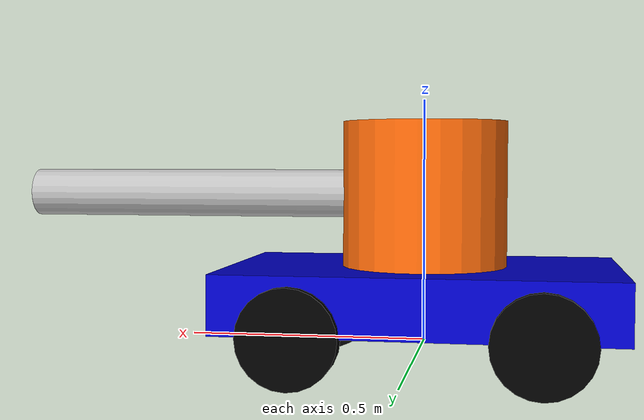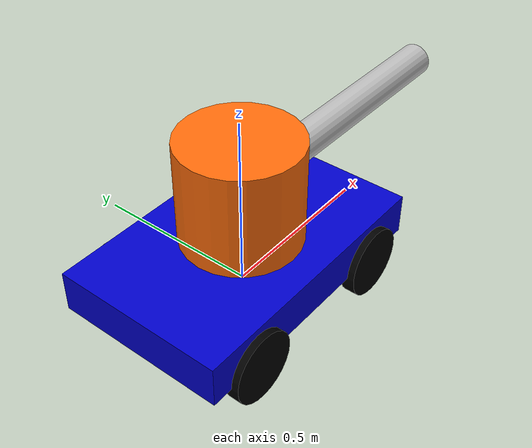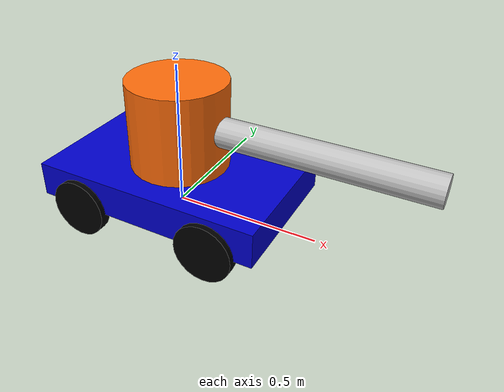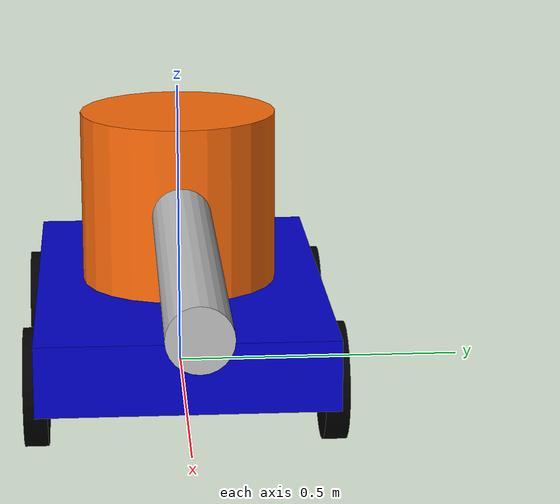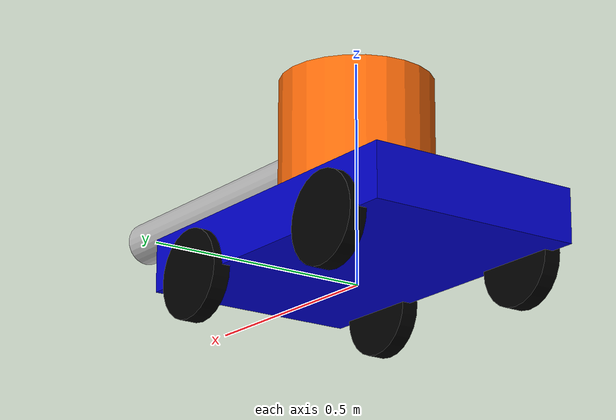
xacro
<?xml version="1.0"?>
<robot name="mbot" xmlns:xacro="http://www.ros.org/wiki/xacro">

  <xacro:include filename="$(find my_robot_gazebo)/urdf/inertia_matrix.xacro" />
  <xacro:include filename="$(find my_robot_gazebo)/urdf/robot_base_gazebo.xacro" />
  <xacro:include filename="joint_transmission.xacro" />
  <xacro:include filename="robot_controller.xacro" />
</robot>

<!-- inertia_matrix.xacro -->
<robot name="inertia_matrix" xmlns:xacro="http://wiki.ros.org/xacro">
  <!-- Macro for inertia matrix -->
  <xacro:macro name="sphere_inertial_matrix" params="m r">
    <inertial>
      <mass value="${m}" />
      <inertia ixx="${2*m*r*r/5}" ixy="0" ixz="0" iyy="${2*m*r*r/5}" iyz="0" izz="${2*m*r*r/5}" />
    </inertial>
  </xacro:macro>

  <xacro:macro name="cylinder_inertial_matrix" params="m r h">
    <inertial>
      <mass value="${m}" />
      <inertia ixx="${m*(3*r*r+h*h)/12}" ixy="0" ixz="0" iyy="${m*(3*r*r+h*h)/12}" iyz="0" izz="${m*r*r/2}" />
    </inertial>
  </xacro:macro>

  <xacro:macro name="Box_inertial_matrix" params="m l w h">
    <inertial>
      <mass value="${m}" />
      <inertia ixx="${m*(h*h + l*l)/12}" ixy="0" ixz="0" iyy="${m*(w*w + l*l)/12}" iyz="0" izz="${m*(w*w + h*h)/12}" />
    </inertial>
  </xacro:macro>
</robot>

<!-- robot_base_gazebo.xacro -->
<robot name="my_robot" xmlns:xacro="http://www.ros.org/wiki/xacro">
  <!-- PROPERTY LIST -->
  <xacro:property name="M_PI" value="3.1415926" />
  <xacro:property name="base_footprint_radius" value="0.001" />

  <xacro:property name="base_length" value="0.8" />
  <xacro:property name="base_width" value="0.5" />
  <xacro:property name="base_height" value="0.12" />
  <xacro:property name="base_mass" value="1" />

  <xacro:property name="wheel_mass" value="0.2" />
  <xacro:property name="wheel_radius" value="0.1" />
  <xacro:property name="wheel_length" value="0.04" />
  <xacro:property name="wheel_joint_x" value="${base_length/2*0.6}" />
  <xacro:property name="wheel_joint_y" value="${base_width/2}" />
  <xacro:property name="wheel_joint_z" value="-${base_height/2}" />

  <xacro:property name="tank_body_mass" value="1" />
  <xacro:property name="tank_body_radius" value="0.17" />
  <xacro:property name="tank_body_length" value="0.3" />

  <xacro:property name="cannon_radius" value="0.05" />
  <xacro:property name="cannon_length" value="0.7" />
  <xacro:property name="cannon_mass" value="0.7" />
  <xacro:property name="cannon_offset_x" value="0.5" />

  <!-- Defining the colors used in this robot -->
  <material name="black">
    <color rgba="0.0 0.0 0.0 1.0" />
  </material>
  <material name="blue">
    <color rgba="0.0 0.0 0.8 1.0" />
  </material>
  <material name="green">
    <color rgba="0.0 1.0 0.0 1.0" />
  </material>
  <material name="grey">
    <color rgba="0.2 0.2 0.2 1.0" />
  </material>
  <material name="orange">
    <color rgba="${255/255} ${108/255} ${10/255} 1.0" />
  </material>
  <material name="brown">
    <color rgba="${205/255} ${127/255} ${50/255} 1.0" />
  </material>
  <material name="red">
    <color rgba="0.8 0.0 0.0 1.0" />
  </material>
  <material name="white">
    <color rgba="1.0 1.0 1.0 1.0" />
  </material>
  <material name="silver">
    <color rgba="0.75 0.75 0.75 1" />
  </material>

  <link name="base_footprint">
    <visual name="base_footprint">
      <origin xyz="0.0 0.0 0.0" rpy="0.0 0.0 0.0" />
      <geometry>
        <sphere radius="${base_footprint_radius}" />
      </geometry>
    </visual>
  </link>
  <gazebo reference="base_footprint">
    <turnGravityOff>false</turnGravityOff>
  </gazebo>

  <joint name="base_footprint_joint" type="fixed">
    <parent link="base_footprint" />
    <child link="base_link" />
    <origin xyz="0.0 0.0 ${base_height*0.8}" rpy="0.0 0.0 0.0" />
  </joint>

  <link name="base_link">
    <visual>
      <origin xyz="0.0 0.0 0.0" rpy="0.0 0.0 0.0" />
      <geometry>
        <box size="${base_length} ${base_width} ${base_height}" />
      </geometry>
      <material name="blue" />
    </visual>
    <collision>
      <origin xyz="0.0 0.0 0.0" rpy="0.0 0.0 0.0" />
      <geometry>
        <box size="${base_length} ${base_width} ${base_height}" />
      </geometry>
    </collision>
    <xacro:Box_inertial_matrix m="${base_mass}" l="${base_length}" w="${base_width}" h="${base_height}" />
  </link>

  <gazebo reference="base_link">
    <material>Gazebo/Blue</material>
  </gazebo>

  <!-- Macro for robot wheel -->
  <xacro:macro name="wheels" params="prefix reflect1 reflect2">
    <joint name="${prefix}_wheel_joint" type="continuous">
      <origin xyz="${reflect1*wheel_joint_x} ${reflect2*wheel_joint_y} ${wheel_joint_z}" rpy="0.0 0.0 0.0" />
      <parent link="base_link" />
      <child link="${prefix}_wheel_link" />
      <axis xyz="0.0 1.0 0.0" />
    </joint>

    <link name="${prefix}_wheel_link">
      <visual>
        <origin xyz="0.0 0.0 0.0" rpy="${M_PI/2} 0.0 0.0" />
        <geometry>
          <cylinder radius="${wheel_radius}" length="${wheel_length}" />
        </geometry>
        <material name="black" />
      </visual>
      <collision>
        <origin xyz="0.0 0.0 0.0" rpy="${M_PI/2} 0.0 0.0" />
        <geometry>
          <cylinder radius="${wheel_radius}" length="${wheel_length}" />
        </geometry>
      </collision>
      <xacro:cylinder_inertial_matrix m="${wheel_mass}" r="${wheel_radius}" h="${wheel_length}" />
    </link>

    <gazebo reference="${prefix}_wheel_link">
      <material>Gazebo/Black</material>
    </gazebo>

  </xacro:macro>

  <xacro:wheels prefix="left_front" reflect1="1" reflect2="1" />
  <xacro:wheels prefix="left_back" reflect1="-1" reflect2="1" />
  <xacro:wheels prefix="right_front" reflect1="1" reflect2="-1" />
  <xacro:wheels prefix="right_back" reflect1="-1" reflect2="-1" />

  <!-- tank_body -->
  <link name="tank_body">
    <visual>
      <origin xyz=" 0 0 0.0" rpy=" 0 0 0" />
      <geometry>
        <cylinder radius="${tank_body_radius}" length="${tank_body_length}" />
      </geometry>
      <material name="orange" />
    </visual>
    <collision>
      <origin xyz="0.0 0.0 0.0" rpy="0.0 0.0 0.0" />
      <geometry>
        <cylinder radius="${tank_body_radius}" length="${tank_body_length}" />
      </geometry>
    </collision>
    <xacro:cylinder_inertial_matrix m="${tank_body_mass}" r="${tank_body_radius}" h="${tank_body_length}" />
  </link>

  <joint name=" body_base_joint" type="fixed">
    <origin xyz=" 0.0 0.0 ${base_height/2+tank_body_length/2}" rpy=" 0.0 0.0 0.0" />
    <parent link="base_link" />
    <child link="tank_body" />
  </joint>

  <gazebo reference="tank_body">
    <material>Gazebo/Orange</material>
  </gazebo>

  <!-- cannon -->
  <joint name="canon_body_joint" type="fixed">
    <origin xyz="${cannon_offset_x} 0.0 0.0" rpy=" 0.0 ${M_PI/2} 0.0" />
    <parent link="tank_body" />
    <child link="cannon" />
  </joint>

  <link name="cannon">
    <visual>
      <origin xyz="0 0 0" rpy=" 0 0 0" />
      <geometry>
        <cylinder radius="${cannon_radius}" length="${cannon_length}" />
      </geometry>
      <material name="silver" />
    </visual>
    <collision>
      <origin xyz="0.0 0.0 0.0" rpy="0.0 0.0 0.0" />
      <geometry>
        <cylinder radius="${cannon_radius}" length="${cannon_length}" />
      </geometry>
    </collision>
    <xacro:cylinder_inertial_matrix m="${cannon_mass}" r="${cannon_radius}" h="${cannon_length}" />
  </link>

  <gazebo reference="cannon">
    <material>Gazebo/Silver</material>
  </gazebo>

</robot>
